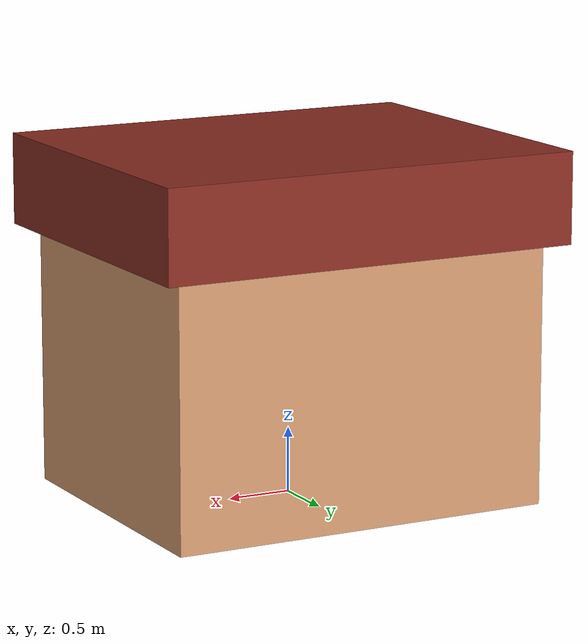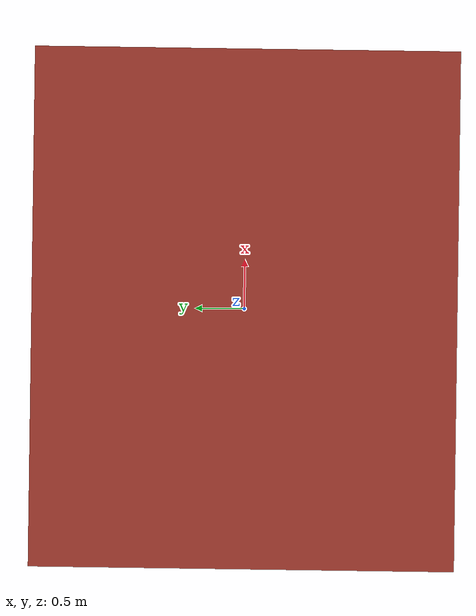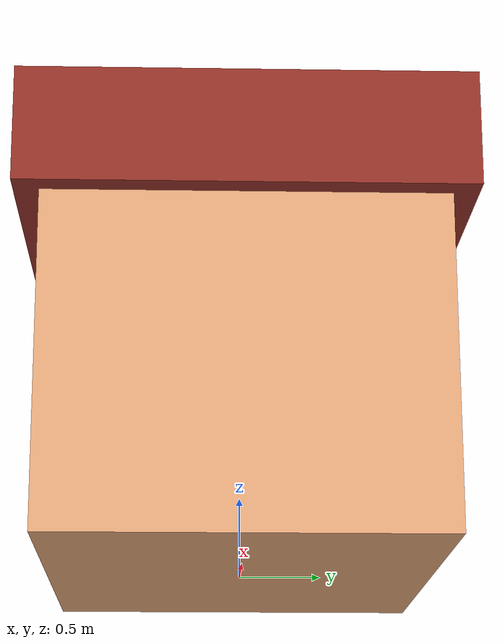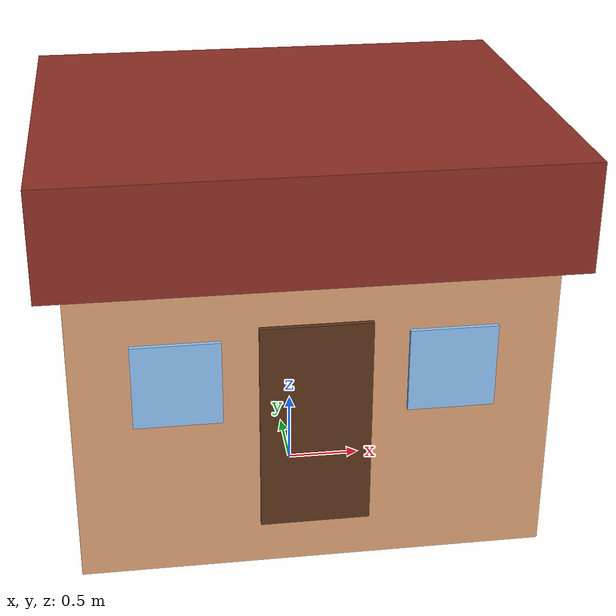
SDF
<?xml version="1.0"?>
<sdf version="1.8">
  <model name="simple_house">
    <static>true</static>
    <link name="body">
      <pose>0 0 1.0 0 0 0</pose>
      <collision name="body_col">
        <geometry><box><size>3.0 2.4 2.0</size></box></geometry>
      </collision>
      <visual name="body_vis">
        <cast_shadows>false</cast_shadows>
        <geometry><box><size>3.0 2.4 2.0</size></box></geometry>
        <material>
          <ambient>0.75 0.55 0.40 1</ambient>
          <diffuse>0.85 0.62 0.45 1</diffuse>
        </material>
      </visual>
      <visual name="roof_vis">
        <cast_shadows>false</cast_shadows>
        <pose>0 0 1.35 0 0 0</pose>
        <geometry><box><size>3.3 2.7 0.7</size></box></geometry>
        <material>
          <ambient>0.45 0.15 0.12 1</ambient>
          <diffuse>0.55 0.18 0.14 1</diffuse>
        </material>
      </visual>
      <visual name="door_vis">
        <cast_shadows>false</cast_shadows>
        <pose>0 -1.21 0.0 0 0 0</pose>
        <geometry><box><size>0.7 0.05 1.4</size></box></geometry>
        <material>
          <ambient>0.25 0.15 0.08 1</ambient>
          <diffuse>0.35 0.20 0.10 1</diffuse>
        </material>
      </visual>
      <visual name="window_l">
        <cast_shadows>false</cast_shadows>
        <pose>-0.85 -1.21 0.35 0 0 0</pose>
        <geometry><box><size>0.55 0.04 0.55</size></box></geometry>
        <material>
          <ambient>0.45 0.65 0.85 1</ambient>
          <diffuse>0.55 0.75 0.95 1</diffuse>
        </material>
      </visual>
      <visual name="window_r">
        <cast_shadows>false</cast_shadows>
        <pose>0.85 -1.21 0.35 0 0 0</pose>
        <geometry><box><size>0.55 0.04 0.55</size></box></geometry>
        <material>
          <ambient>0.45 0.65 0.85 1</ambient>
          <diffuse>0.55 0.75 0.95 1</diffuse>
        </material>
      </visual>
    </link>
  </model>
</sdf>
